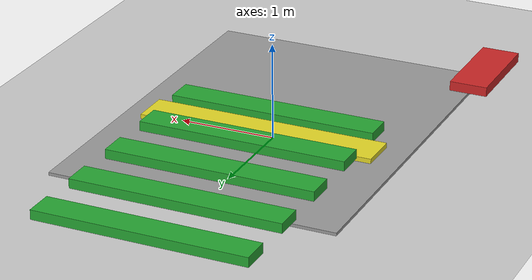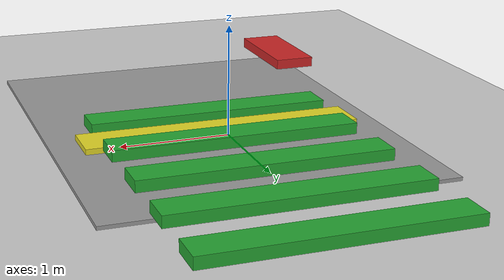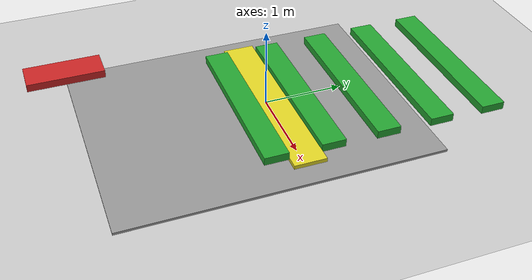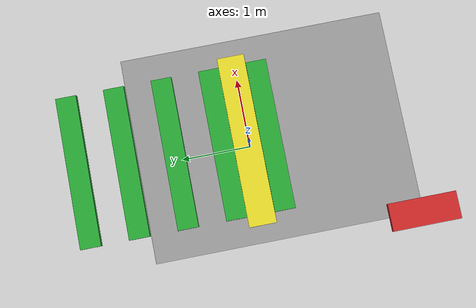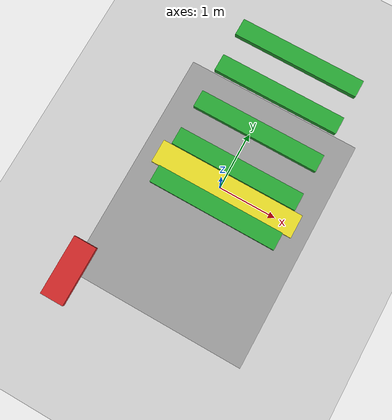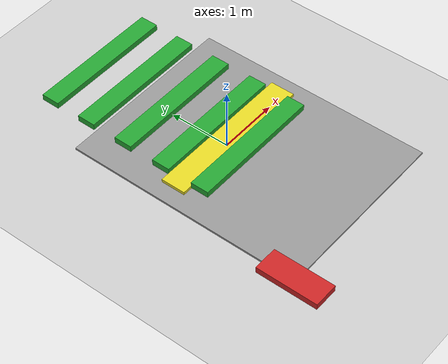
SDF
<sdf version="1.7">
 <world name="default">
  <light name="sun" type="directional">
   <pose>0 0 10 0 -0 0</pose>
   <diffuse>0.8 0.8 0.8 1</diffuse>
   <specular>0.2 0.2 0.2 1</specular>
   <attenuation>
    <range>1000</range>
    <constant>0.9</constant>
    <linear>0.01</linear>
    <quadratic>0.001</quadratic>
   </attenuation>
   <direction>-0.5 0.1 -0.9</direction>
   <spot><inner_angle>0</inner_angle><outer_angle>0</outer_angle><falloff>0</falloff></spot>
  </light>
  <model name="ground_plane">
   <static>1</static>
   <link name="link">
    <collision name="collision">
     <geometry><plane><normal>0 0 1</normal><size>100 100</size></plane></geometry>
     <surface>
      <contact><collide_bitmask>65535</collide_bitmask></contact>
      <friction><ode><mu>100</mu><mu2>50</mu2></ode></friction>
     </surface>
    </collision>
    <visual name="visual">
     <cast_shadows>0</cast_shadows>
     <geometry><plane><normal>0 0 1</normal><size>100 100</size></plane></geometry>
     <material>
      <script><uri>file://media/materials/scripts/gazebo.material</uri><name>Gazebo/Grey</name></script>
     </material>
    </visual>
   </link>
  </model>
  <gravity>0 0 -9.8</gravity>
  <magnetic_field>6e-06 2.3e-05 -4.2e-05</magnetic_field>
  <atmosphere type="adiabatic"/>
  <physics type="ode">
   <max_step_size>0.001</max_step_size>
   <real_time_factor>1</real_time_factor>
   <real_time_update_rate>1000</real_time_update_rate>
  </physics>
  <scene><ambient>0.4 0.4 0.4 1</ambient><background>0.7 0.7 0.7 1</background><shadows>1</shadows></scene>
  <audio><device>default</device></audio>
  <spherical_coordinates>
   <surface_model>EARTH_WGS84</surface_model>
   <latitude_deg>0</latitude_deg>
   <longitude_deg>0</longitude_deg>
   <elevation>0</elevation>
   <heading_deg>0</heading_deg>
  </spherical_coordinates>
  <model name="field_model">
   <static>1</static>
   <link name="ground">
    <visual name="ground_visual">
     <geometry><box><size>3 3.9 0.05</size></box></geometry>
     <material>
      <script><uri>file://media/materials/scripts/gazebo.material</uri><name>Gazebo/Grey</name></script>
     </material>
    </visual>
    <collision name="ground_collision"><geometry><box><size>3 3.9 0.05</size></box></geometry></collision>
   </link>
   <link name="ridge_1">
    <pose>0 0 0.125 0 -0 0</pose>
    <visual name="ridge_1_visual">
     <geometry><box><size>2.2 0.3 0.1</size></box></geometry>
     <material>
      <script><uri>file://media/materials/scripts/gazebo.material</uri><name>Gazebo/Green</name></script>
     </material>
    </visual>
    <collision name="ridge_1_collision"><geometry><box><size>2.2 0.3 0.1</size></box></geometry></collision>
   </link>
   <link name="ridge_2">
    <pose>0 0.7 0.125 0 -0 0</pose>
    <visual name="ridge_2_visual">
     <geometry><box><size>2.2 0.3 0.1</size></box></geometry>
     <material>
      <script><uri>file://media/materials/scripts/gazebo.material</uri><name>Gazebo/Green</name></script>
     </material>
    </visual>
    <collision name="ridge_2_collision"><geometry><box><size>2.2 0.3 0.1</size></box></geometry></collision>
   </link>
   <link name="ridge_3">
    <pose>0 1.4 0.125 0 -0 0</pose>
    <visual name="ridge_3_visual">
     <geometry><box><size>2.2 0.3 0.1</size></box></geometry>
     <material>
      <script><uri>file://media/materials/scripts/gazebo.material</uri><name>Gazebo/Green</name></script>
     </material>
    </visual>
    <collision name="ridge_3_collision"><geometry><box><size>2.2 0.3 0.1</size></box></geometry></collision>
   </link>
   <link name="ridge_4">
    <pose>0 2.1 0.125 0 -0 0</pose>
    <visual name="ridge_4_visual">
     <geometry><box><size>2.2 0.3 0.1</size></box></geometry>
     <material>
      <script><uri>file://media/materials/scripts/gazebo.material</uri><name>Gazebo/Green</name></script>
     </material>
    </visual>
    <collision name="ridge_4_collision"><geometry><box><size>2.2 0.3 0.1</size></box></geometry></collision>
   </link>
   <link name="ridge_5">
    <pose>0 2.8 0.125 0 -0 0</pose>
    <visual name="ridge_5_visual">
     <geometry><box><size>2.2 0.3 0.1</size></box></geometry>
     <material>
      <script><uri>file://media/materials/scripts/gazebo.material</uri><name>Gazebo/Green</name></script>
     </material>
    </visual>
    <collision name="ridge_5_collision"><geometry><box><size>2.2 0.3 0.1</size></box></geometry></collision>
   </link>
   <link name="path">
    <pose>0 0.35 0.075 0 -0 0</pose>
    <visual name="path_visual">
     <geometry><box><size>2.5 0.4 0.05</size></box></geometry>
     <material>
      <script><uri>file://media/materials/scripts/gazebo.material</uri><name>Gazebo/Yellow</name></script>
     </material>
    </visual>
    <collision name="path_collision"><geometry><box><size>2.5 0.4 0.05</size></box></geometry></collision>
   </link>
   <link name="start_area">
    <pose>-1.5 -1.95 0.075 0 -0 0</pose>
    <visual name="start_area_visual">
     <geometry><box><size>0.4 1 0.1</size></box></geometry>
     <material>
      <script><uri>file://media/materials/scripts/gazebo.material</uri><name>Gazebo/Red</name></script>
     </material>
    </visual>
    <collision name="start_area_collision"><geometry><box><size>0.4 1 0.1</size></box></geometry></collision>
   </link>
   <link name="link_fixed"/>
   <joint name="ground_fixed" type="fixed"><parent>link_fixed</parent><child>ground</child></joint>
   <joint name="ridge1_fixed" type="fixed"><parent>link_fixed</parent><child>ridge_1</child></joint>
   <joint name="ridge2_fixed" type="fixed"><parent>link_fixed</parent><child>ridge_2</child></joint>
   <joint name="ridge3_fixed" type="fixed"><parent>link_fixed</parent><child>ridge_3</child></joint>
   <joint name="ridge4_fixed" type="fixed"><parent>link_fixed</parent><child>ridge_4</child></joint>
   <joint name="ridge5_fixed" type="fixed"><parent>link_fixed</parent><child>ridge_5</child></joint>
   <joint name="path_fixed" type="fixed"><parent>link_fixed</parent><child>path</child></joint>
   <joint name="start_area_fixed" type="fixed"><parent>link_fixed</parent><child>start_area</child></joint>
   <pose>0.101243 -0.318731 0 0 -0 0</pose>
  </model>
 </world>
</sdf>
